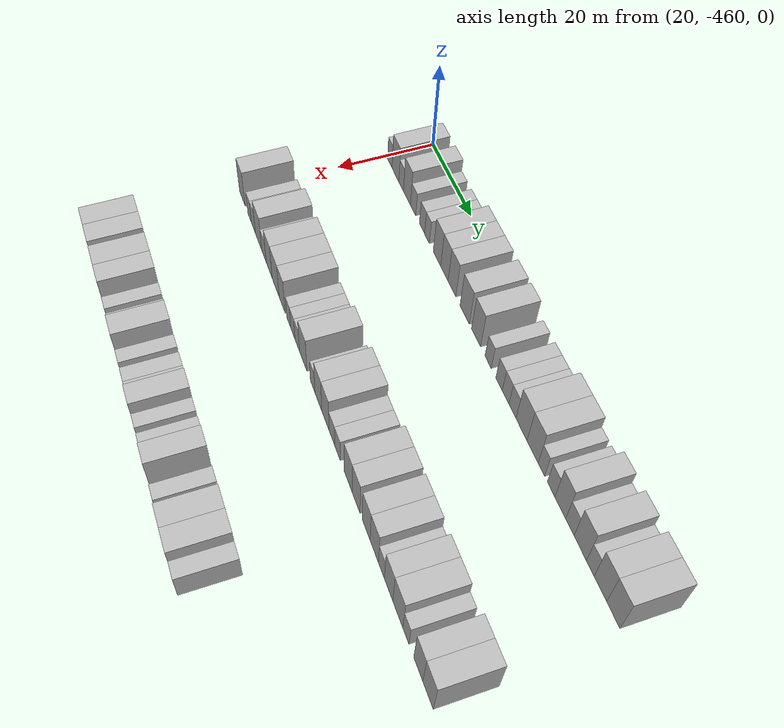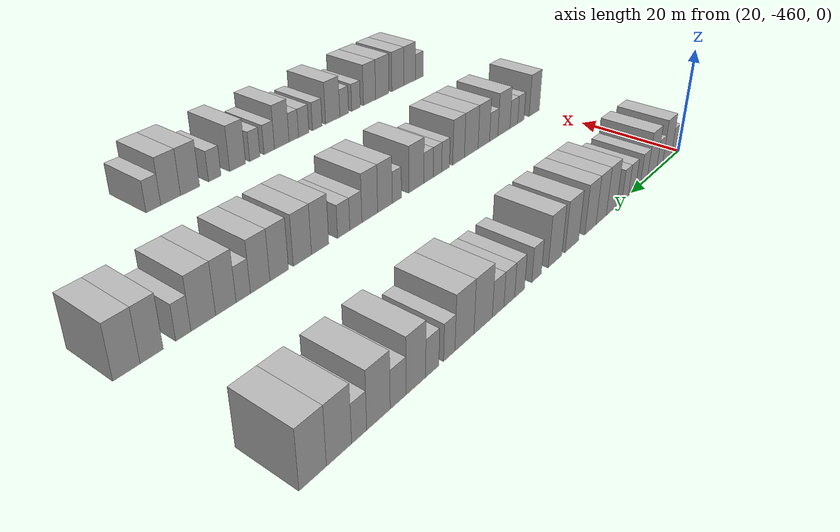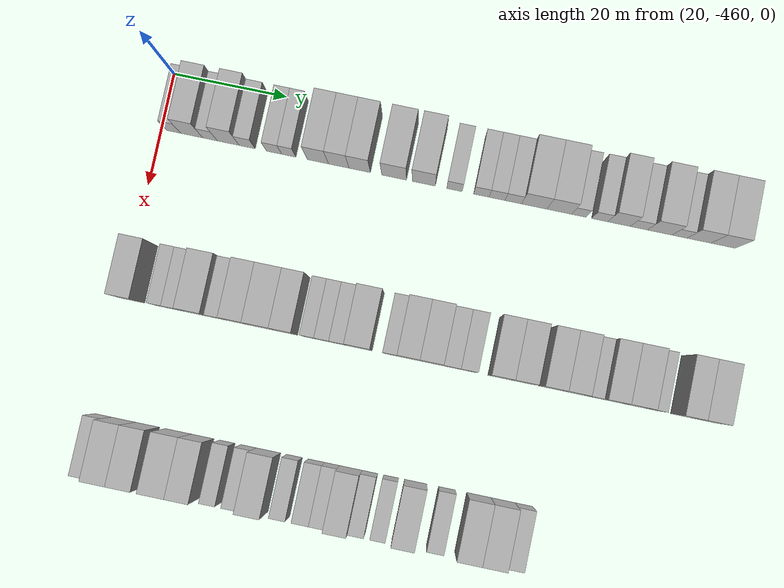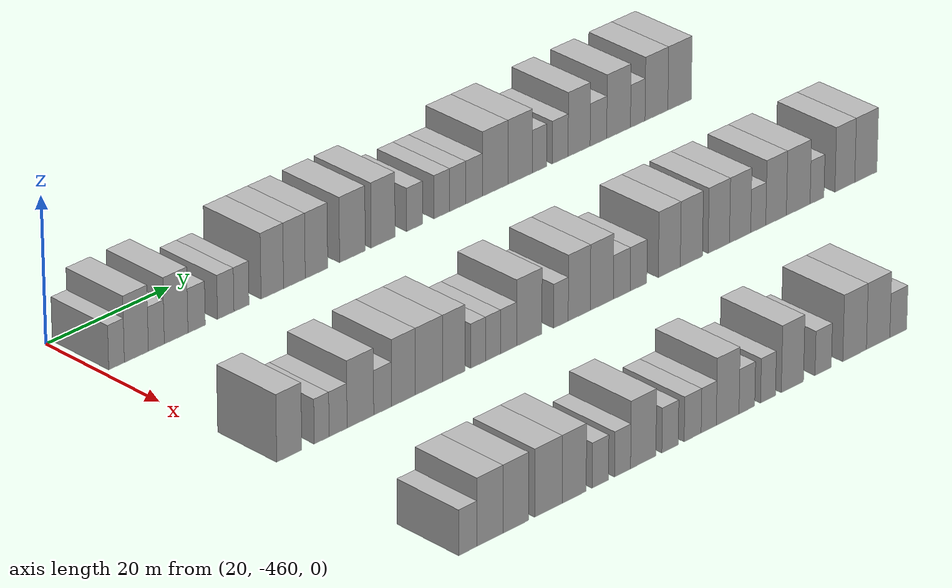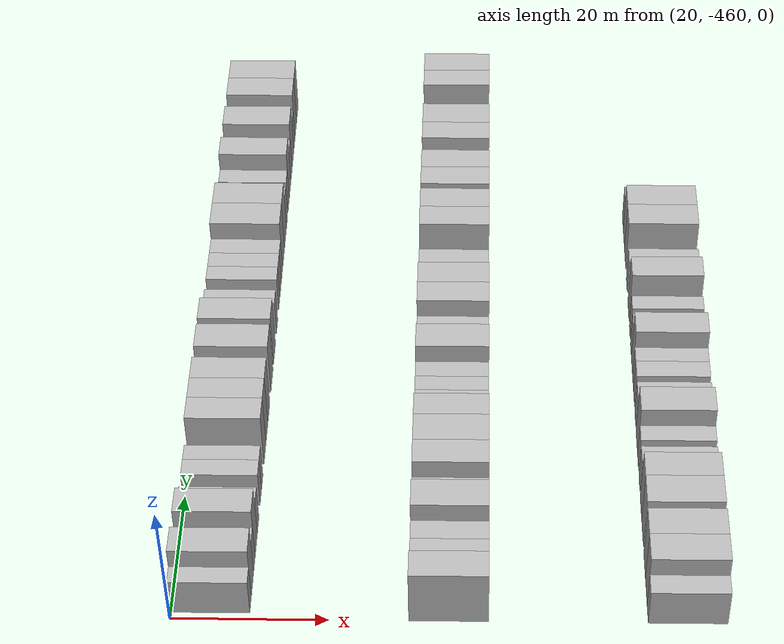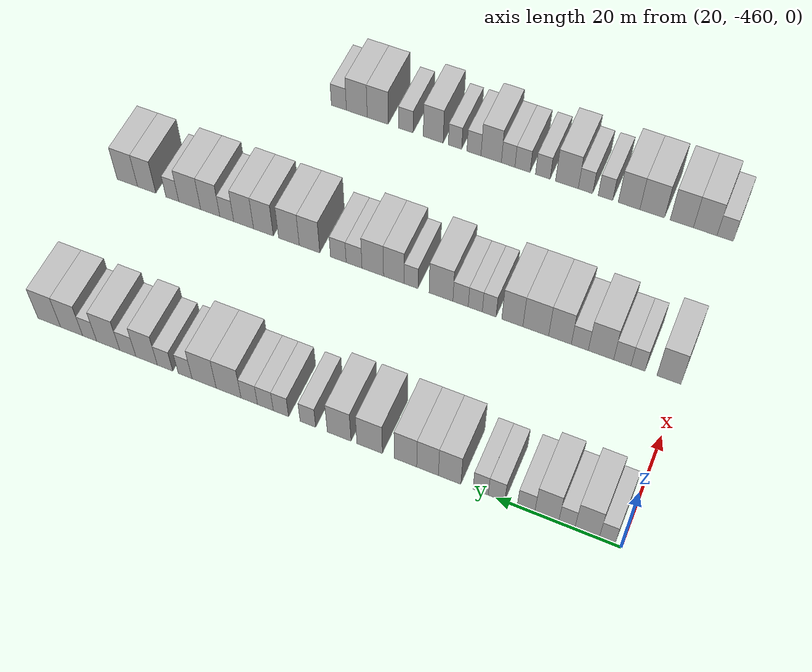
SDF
<sdf version="1.6">
 <world name="default">
  <model name="building_1">
   <static>1</static>
   <pose>25.0000 -457.7457 0 0.000000 0.000000 0.000000</pose>
   <link name="link">
    <pose>0 0 3.00 0 0 0</pose>
    <collision name="collision"><geometry><box><size>10.0000 2.5086 6.0000</size></box></geometry></collision>
    <visual name="visual">
     <cast_shadows>0</cast_shadows>
     <geometry><box><size>10.0000 2.5086 6.0000</size></box></geometry>
     <material>
      <script>
       <uri>model://HANNAS_wall/materials/scripts</uri>
       <uri>model://HANNAS_wall/materials/textures</uri>
       <name>vrc/HANNAS_wall</name>
      </script>
     </material>
    </visual>
   </link>
  </model>
  <model name="building_2">
   <static>1</static>
   <pose>25.0000 -454.5557 0 0.000000 0.000000 0.000000</pose>
   <link name="link">
    <pose>0 0 4.50 0 0 0</pose>
    <collision name="collision"><geometry><box><size>10.0000 3.8714 9.0000</size></box></geometry></collision>
    <visual name="visual">
     <cast_shadows>0</cast_shadows>
     <geometry><box><size>10.0000 3.8714 9.0000</size></box></geometry>
     <material>
      <script>
       <uri>model://HANNAS_wall/materials/scripts</uri>
       <uri>model://HANNAS_wall/materials/textures</uri>
       <name>vrc/HANNAS_wall</name>
      </script>
     </material>
    </visual>
   </link>
  </model>
  <model name="building_3">
   <static>1</static>
   <pose>25.0000 -451.3285 0 0.000000 0.000000 0.000000</pose>
   <link name="link">
    <pose>0 0 3.00 0 0 0</pose>
    <collision name="collision"><geometry><box><size>10.0000 2.5830 6.0000</size></box></geometry></collision>
    <visual name="visual">
     <cast_shadows>0</cast_shadows>
     <geometry><box><size>10.0000 2.5830 6.0000</size></box></geometry>
     <material>
      <script>
       <uri>model://HANNAS_wall/materials/scripts</uri>
       <uri>model://HANNAS_wall/materials/textures</uri>
       <name>vrc/HANNAS_wall</name>
      </script>
     </material>
    </visual>
   </link>
  </model>
  <model name="building_4">
   <static>1</static>
   <pose>25.0000 -448.1120 0 0.000000 0.000000 0.000000</pose>
   <link name="link">
    <pose>0 0 4.50 0 0 0</pose>
    <collision name="collision"><geometry><box><size>10.0000 3.8501 9.0000</size></box></geometry></collision>
    <visual name="visual">
     <cast_shadows>0</cast_shadows>
     <geometry><box><size>10.0000 3.8501 9.0000</size></box></geometry>
     <material>
      <script>
       <uri>model://HANNAS_wall/materials/scripts</uri>
       <uri>model://HANNAS_wall/materials/textures</uri>
       <name>vrc/HANNAS_wall</name>
      </script>
     </material>
    </visual>
   </link>
  </model>
  <model name="building_5">
   <static>1</static>
   <pose>25.0000 -444.7718 0 0.000000 0.000000 0.000000</pose>
   <link name="link">
    <pose>0 0 3.00 0 0 0</pose>
    <collision name="collision"><geometry><box><size>10.0000 2.8304 6.0000</size></box></geometry></collision>
    <visual name="visual">
     <cast_shadows>0</cast_shadows>
     <geometry><box><size>10.0000 2.8304 6.0000</size></box></geometry>
     <material>
      <script>
       <uri>model://HANNAS_wall/materials/scripts</uri>
       <uri>model://HANNAS_wall/materials/textures</uri>
       <name>vrc/HANNAS_wall</name>
      </script>
     </material>
    </visual>
   </link>
  </model>
  <model name="building_6">
   <static>1</static>
   <pose>25.0000 -440.0034 0 0.000000 0.000000 0.000000</pose>
   <link name="link">
    <pose>0 0 3.00 0 0 0</pose>
    <collision name="collision"><geometry><box><size>10.0000 2.7064 6.0000</size></box></geometry></collision>
    <visual name="visual">
     <cast_shadows>0</cast_shadows>
     <geometry><box><size>10.0000 2.7064 6.0000</size></box></geometry>
     <material>
      <script>
       <uri>model://HANNAS_wall/materials/scripts</uri>
       <uri>model://HANNAS_wall/materials/textures</uri>
       <name>vrc/HANNAS_wall</name>
      </script>
     </material>
    </visual>
   </link>
  </model>
  <model name="building_7">
   <static>1</static>
   <pose>25.0000 -437.4058 0 0.000000 0.000000 0.000000</pose>
   <link name="link">
    <pose>0 0 3.00 0 0 0</pose>
    <collision name="collision"><geometry><box><size>10.0000 2.4887 6.0000</size></box></geometry></collision>
    <visual name="visual">
     <cast_shadows>0</cast_shadows>
     <geometry><box><size>10.0000 2.4887 6.0000</size></box></geometry>
     <material>
      <script>
       <uri>model://HANNAS_wall/materials/scripts</uri>
       <uri>model://HANNAS_wall/materials/textures</uri>
       <name>vrc/HANNAS_wall</name>
      </script>
     </material>
    </visual>
   </link>
  </model>
  <model name="building_8">
   <static>1</static>
   <pose>25.0000 -432.2913 0 0.000000 0.000000 0.000000</pose>
   <link name="link">
    <pose>0 0 4.50 0 0 0</pose>
    <collision name="collision"><geometry><box><size>10.0000 3.7402 9.0000</size></box></geometry></collision>
    <visual name="visual">
     <cast_shadows>0</cast_shadows>
     <geometry><box><size>10.0000 3.7402 9.0000</size></box></geometry>
     <material>
      <script>
       <uri>model://HANNAS_wall/materials/scripts</uri>
       <uri>model://HANNAS_wall/materials/textures</uri>
       <name>vrc/HANNAS_wall</name>
      </script>
     </material>
    </visual>
   </link>
  </model>
  <model name="building_9">
   <static>1</static>
   <pose>25.0000 -428.6102 0 0.000000 0.000000 0.000000</pose>
   <link name="link">
    <pose>0 0 4.50 0 0 0</pose>
    <collision name="collision"><geometry><box><size>10.0000 3.6220 9.0000</size></box></geometry></collision>
    <visual name="visual">
     <cast_shadows>0</cast_shadows>
     <geometry><box><size>10.0000 3.6220 9.0000</size></box></geometry>
     <material>
      <script>
       <uri>model://HANNAS_wall/materials/scripts</uri>
       <uri>model://HANNAS_wall/materials/textures</uri>
       <name>vrc/HANNAS_wall</name>
      </script>
     </material>
    </visual>
   </link>
  </model>
  <model name="building_10">
   <static>1</static>
   <pose>25.0000 -424.9106 0 0.000000 0.000000 0.000000</pose>
   <link name="link">
    <pose>0 0 4.50 0 0 0</pose>
    <collision name="collision"><geometry><box><size>10.0000 3.7773 9.0000</size></box></geometry></collision>
    <visual name="visual">
     <cast_shadows>0</cast_shadows>
     <geometry><box><size>10.0000 3.7773 9.0000</size></box></geometry>
     <material>
      <script>
       <uri>model://HANNAS_wall/materials/scripts</uri>
       <uri>model://HANNAS_wall/materials/textures</uri>
       <name>vrc/HANNAS_wall</name>
      </script>
     </material>
    </visual>
   </link>
  </model>
  <model name="building_11">
   <static>1</static>
   <pose>25.0000 -418.8472 0 0.000000 0.000000 0.000000</pose>
   <link name="link">
    <pose>0 0 4.50 0 0 0</pose>
    <collision name="collision"><geometry><box><size>10.0000 4.3493 9.0000</size></box></geometry></collision>
    <visual name="visual">
     <cast_shadows>0</cast_shadows>
     <geometry><box><size>10.0000 4.3493 9.0000</size></box></geometry>
     <material>
      <script>
       <uri>model://HANNAS_wall/materials/scripts</uri>
       <uri>model://HANNAS_wall/materials/textures</uri>
       <name>vrc/HANNAS_wall</name>
      </script>
     </material>
    </visual>
   </link>
  </model>
  <model name="building_12">
   <static>1</static>
   <pose>25.0000 -413.6309 0 0.000000 0.000000 0.000000</pose>
   <link name="link">
    <pose>0 0 4.50 0 0 0</pose>
    <collision name="collision"><geometry><box><size>10.0000 4.0833 9.0000</size></box></geometry></collision>
    <visual name="visual">
     <cast_shadows>0</cast_shadows>
     <geometry><box><size>10.0000 4.0833 9.0000</size></box></geometry>
     <material>
      <script>
       <uri>model://HANNAS_wall/materials/scripts</uri>
       <uri>model://HANNAS_wall/materials/textures</uri>
       <name>vrc/HANNAS_wall</name>
      </script>
     </material>
    </visual>
   </link>
  </model>
  <model name="building_13">
   <static>1</static>
   <pose>25.0000 -408.2302 0 0.000000 0.000000 0.000000</pose>
   <link name="link">
    <pose>0 0 3.00 0 0 0</pose>
    <collision name="collision"><geometry><box><size>10.0000 2.7181 6.0000</size></box></geometry></collision>
    <visual name="visual">
     <cast_shadows>0</cast_shadows>
     <geometry><box><size>10.0000 2.7181 6.0000</size></box></geometry>
     <material>
      <script>
       <uri>model://HANNAS_wall/materials/scripts</uri>
       <uri>model://HANNAS_wall/materials/textures</uri>
       <name>vrc/HANNAS_wall</name>
      </script>
     </material>
    </visual>
   </link>
  </model>
  <model name="building_14">
   <static>1</static>
   <pose>25.0000 -403.5252 0 0.000000 0.000000 0.000000</pose>
   <link name="link">
    <pose>0 0 3.00 0 0 0</pose>
    <collision name="collision"><geometry><box><size>10.0000 2.6919 6.0000</size></box></geometry></collision>
    <visual name="visual">
     <cast_shadows>0</cast_shadows>
     <geometry><box><size>10.0000 2.6919 6.0000</size></box></geometry>
     <material>
      <script>
       <uri>model://HANNAS_wall/materials/scripts</uri>
       <uri>model://HANNAS_wall/materials/textures</uri>
       <name>vrc/HANNAS_wall</name>
      </script>
     </material>
    </visual>
   </link>
  </model>
  <model name="building_15">
   <static>1</static>
   <pose>25.0000 -400.7834 0 0.000000 0.000000 0.000000</pose>
   <link name="link">
    <pose>0 0 3.00 0 0 0</pose>
    <collision name="collision"><geometry><box><size>10.0000 2.7916 6.0000</size></box></geometry></collision>
    <visual name="visual">
     <cast_shadows>0</cast_shadows>
     <geometry><box><size>10.0000 2.7916 6.0000</size></box></geometry>
     <material>
      <script>
       <uri>model://HANNAS_wall/materials/scripts</uri>
       <uri>model://HANNAS_wall/materials/textures</uri>
       <name>vrc/HANNAS_wall</name>
      </script>
     </material>
    </visual>
   </link>
  </model>
  <model name="building_16">
   <static>1</static>
   <pose>25.0000 -397.9333 0 0.000000 0.000000 0.000000</pose>
   <link name="link">
    <pose>0 0 3.00 0 0 0</pose>
    <collision name="collision"><geometry><box><size>10.0000 2.9087 6.0000</size></box></geometry></collision>
    <visual name="visual">
     <cast_shadows>0</cast_shadows>
     <geometry><box><size>10.0000 2.9087 6.0000</size></box></geometry>
     <material>
      <script>
       <uri>model://HANNAS_wall/materials/scripts</uri>
       <uri>model://HANNAS_wall/materials/textures</uri>
       <name>vrc/HANNAS_wall</name>
      </script>
     </material>
    </visual>
   </link>
  </model>
  <model name="building_17">
   <static>1</static>
   <pose>25.0000 -394.2584 0 0.000000 0.000000 0.000000</pose>
   <link name="link">
    <pose>0 0 4.50 0 0 0</pose>
    <collision name="collision"><geometry><box><size>10.0000 4.4411 9.0000</size></box></geometry></collision>
    <visual name="visual">
     <cast_shadows>0</cast_shadows>
     <geometry><box><size>10.0000 4.4411 9.0000</size></box></geometry>
     <material>
      <script>
       <uri>model://HANNAS_wall/materials/scripts</uri>
       <uri>model://HANNAS_wall/materials/textures</uri>
       <name>vrc/HANNAS_wall</name>
      </script>
     </material>
    </visual>
   </link>
  </model>
  <model name="building_18">
   <static>1</static>
   <pose>25.0000 -389.8638 0 0.000000 0.000000 0.000000</pose>
   <link name="link">
    <pose>0 0 4.50 0 0 0</pose>
    <collision name="collision"><geometry><box><size>10.0000 4.3482 9.0000</size></box></geometry></collision>
    <visual name="visual">
     <cast_shadows>0</cast_shadows>
     <geometry><box><size>10.0000 4.3482 9.0000</size></box></geometry>
     <material>
      <script>
       <uri>model://HANNAS_wall/materials/scripts</uri>
       <uri>model://HANNAS_wall/materials/textures</uri>
       <name>vrc/HANNAS_wall</name>
      </script>
     </material>
    </visual>
   </link>
  </model>
  <model name="building_19">
   <static>1</static>
   <pose>25.0000 -386.4379 0 0.000000 0.000000 0.000000</pose>
   <link name="link">
    <pose>0 0 3.00 0 0 0</pose>
    <collision name="collision"><geometry><box><size>10.0000 2.5035 6.0000</size></box></geometry></collision>
    <visual name="visual">
     <cast_shadows>0</cast_shadows>
     <geometry><box><size>10.0000 2.5035 6.0000</size></box></geometry>
     <material>
      <script>
       <uri>model://HANNAS_wall/materials/scripts</uri>
       <uri>model://HANNAS_wall/materials/textures</uri>
       <name>vrc/HANNAS_wall</name>
      </script>
     </material>
    </visual>
   </link>
  </model>
  <model name="building_20">
   <static>1</static>
   <pose>25.0000 -382.7788 0 0.000000 0.000000 0.000000</pose>
   <link name="link">
    <pose>0 0 3.00 0 0 0</pose>
    <collision name="collision"><geometry><box><size>10.0000 2.8147 6.0000</size></box></geometry></collision>
    <visual name="visual">
     <cast_shadows>0</cast_shadows>
     <geometry><box><size>10.0000 2.8147 6.0000</size></box></geometry>
     <material>
      <script>
       <uri>model://HANNAS_wall/materials/scripts</uri>
       <uri>model://HANNAS_wall/materials/textures</uri>
       <name>vrc/HANNAS_wall</name>
      </script>
     </material>
    </visual>
   </link>
  </model>
  <model name="building_21">
   <static>1</static>
   <pose>25.0000 -379.4013 0 0.000000 0.000000 0.000000</pose>
   <link name="link">
    <pose>0 0 4.50 0 0 0</pose>
    <collision name="collision"><geometry><box><size>10.0000 3.9403 9.0000</size></box></geometry></collision>
    <visual name="visual">
     <cast_shadows>0</cast_shadows>
     <geometry><box><size>10.0000 3.9403 9.0000</size></box></geometry>
     <material>
      <script>
       <uri>model://HANNAS_wall/materials/scripts</uri>
       <uri>model://HANNAS_wall/materials/textures</uri>
       <name>vrc/HANNAS_wall</name>
      </script>
     </material>
    </visual>
   </link>
  </model>
  <model name="building_22">
   <static>1</static>
   <pose>25.0000 -375.9395 0 0.000000 0.000000 0.000000</pose>
   <link name="link">
    <pose>0 0 3.00 0 0 0</pose>
    <collision name="collision"><geometry><box><size>10.0000 2.9834 6.0000</size></box></geometry></collision>
    <visual name="visual">
     <cast_shadows>0</cast_shadows>
     <geometry><box><size>10.0000 2.9834 6.0000</size></box></geometry>
     <material>
      <script>
       <uri>model://HANNAS_wall/materials/scripts</uri>
       <uri>model://HANNAS_wall/materials/textures</uri>
       <name>vrc/HANNAS_wall</name>
      </script>
     </material>
    </visual>
   </link>
  </model>
  <model name="building_23">
   <static>1</static>
   <pose>25.0000 -372.3042 0 0.000000 0.000000 0.000000</pose>
   <link name="link">
    <pose>0 0 4.50 0 0 0</pose>
    <collision name="collision"><geometry><box><size>10.0000 4.2872 9.0000</size></box></geometry></collision>
    <visual name="visual">
     <cast_shadows>0</cast_shadows>
     <geometry><box><size>10.0000 4.2872 9.0000</size></box></geometry>
     <material>
      <script>
       <uri>model://HANNAS_wall/materials/scripts</uri>
       <uri>model://HANNAS_wall/materials/textures</uri>
       <name>vrc/HANNAS_wall</name>
      </script>
     </material>
    </visual>
   </link>
  </model>
  <model name="building_24">
   <static>1</static>
   <pose>25.0000 -368.8440 0 0.000000 0.000000 0.000000</pose>
   <link name="link">
    <pose>0 0 3.00 0 0 0</pose>
    <collision name="collision"><geometry><box><size>10.0000 2.6332 6.0000</size></box></geometry></collision>
    <visual name="visual">
     <cast_shadows>0</cast_shadows>
     <geometry><box><size>10.0000 2.6332 6.0000</size></box></geometry>
     <material>
      <script>
       <uri>model://HANNAS_wall/materials/scripts</uri>
       <uri>model://HANNAS_wall/materials/textures</uri>
       <name>vrc/HANNAS_wall</name>
      </script>
     </material>
    </visual>
   </link>
  </model>
  <model name="building_25">
   <static>1</static>
   <pose>25.0000 -365.4459 0 0.000000 0.000000 0.000000</pose>
   <link name="link">
    <pose>0 0 4.50 0 0 0</pose>
    <collision name="collision"><geometry><box><size>10.0000 4.1630 9.0000</size></box></geometry></collision>
    <visual name="visual">
     <cast_shadows>0</cast_shadows>
     <geometry><box><size>10.0000 4.1630 9.0000</size></box></geometry>
     <material>
      <script>
       <uri>model://HANNAS_wall/materials/scripts</uri>
       <uri>model://HANNAS_wall/materials/textures</uri>
       <name>vrc/HANNAS_wall</name>
      </script>
     </material>
    </visual>
   </link>
  </model>
  <model name="building_26">
   <static>1</static>
   <pose>25.0000 -361.2207 0 0.000000 0.000000 0.000000</pose>
   <link name="link">
    <pose>0 0 4.50 0 0 0</pose>
    <collision name="collision"><geometry><box><size>10.0000 4.2874 9.0000</size></box></geometry></collision>
    <visual name="visual">
     <cast_shadows>0</cast_shadows>
     <geometry><box><size>10.0000 4.2874 9.0000</size></box></geometry>
     <material>
      <script>
       <uri>model://HANNAS_wall/materials/scripts</uri>
       <uri>model://HANNAS_wall/materials/textures</uri>
       <name>vrc/HANNAS_wall</name>
      </script>
     </material>
    </visual>
   </link>
  </model>
  <model name="building_208">
   <static>1</static>
   <pose>55.0000 -457.9920 0 0.000000 0.000000 0.000000</pose>
   <link name="link">
    <pose>0 0 4.50 0 0 0</pose>
    <collision name="collision"><geometry><box><size>10.0000 4.0160 9.0000</size></box></geometry></collision>
    <visual name="visual">
     <cast_shadows>0</cast_shadows>
     <geometry><box><size>10.0000 4.0160 9.0000</size></box></geometry>
     <material>
      <script>
       <uri>model://HANNAS_wall/materials/scripts</uri>
       <uri>model://HANNAS_wall/materials/textures</uri>
       <name>vrc/HANNAS_wall</name>
      </script>
     </material>
    </visual>
   </link>
  </model>
  <model name="building_209">
   <static>1</static>
   <pose>55.0000 -452.7828 0 0.000000 0.000000 0.000000</pose>
   <link name="link">
    <pose>0 0 3.00 0 0 0</pose>
    <collision name="collision"><geometry><box><size>10.0000 2.4023 6.0000</size></box></geometry></collision>
    <visual name="visual">
     <cast_shadows>0</cast_shadows>
     <geometry><box><size>10.0000 2.4023 6.0000</size></box></geometry>
     <material>
      <script>
       <uri>model://HANNAS_wall/materials/scripts</uri>
       <uri>model://HANNAS_wall/materials/textures</uri>
       <name>vrc/HANNAS_wall</name>
      </script>
     </material>
    </visual>
   </link>
  </model>
  <model name="building_210">
   <static>1</static>
   <pose>55.0000 -450.1242 0 0.000000 0.000000 0.000000</pose>
   <link name="link">
    <pose>0 0 3.00 0 0 0</pose>
    <collision name="collision"><geometry><box><size>10.0000 2.9151 6.0000</size></box></geometry></collision>
    <visual name="visual">
     <cast_shadows>0</cast_shadows>
     <geometry><box><size>10.0000 2.9151 6.0000</size></box></geometry>
     <material>
      <script>
       <uri>model://HANNAS_wall/materials/scripts</uri>
       <uri>model://HANNAS_wall/materials/textures</uri>
       <name>vrc/HANNAS_wall</name>
      </script>
     </material>
    </visual>
   </link>
  </model>
  <model name="building_211">
   <static>1</static>
   <pose>55.0000 -446.4964 0 0.000000 0.000000 0.000000</pose>
   <link name="link">
    <pose>0 0 4.50 0 0 0</pose>
    <collision name="collision"><geometry><box><size>10.0000 4.3405 9.0000</size></box></geometry></collision>
    <visual name="visual">
     <cast_shadows>0</cast_shadows>
     <geometry><box><size>10.0000 4.3405 9.0000</size></box></geometry>
     <material>
      <script>
       <uri>model://HANNAS_wall/materials/scripts</uri>
       <uri>model://HANNAS_wall/materials/textures</uri>
       <name>vrc/HANNAS_wall</name>
      </script>
     </material>
    </visual>
   </link>
  </model>
  <model name="building_212">
   <static>1</static>
   <pose>55.0000 -442.8612 0 0.000000 0.000000 0.000000</pose>
   <link name="link">
    <pose>0 0 3.00 0 0 0</pose>
    <collision name="collision"><geometry><box><size>10.0000 2.9299 6.0000</size></box></geometry></collision>
    <visual name="visual">
     <cast_shadows>0</cast_shadows>
     <geometry><box><size>10.0000 2.9299 6.0000</size></box></geometry>
     <material>
      <script>
       <uri>model://HANNAS_wall/materials/scripts</uri>
       <uri>model://HANNAS_wall/materials/textures</uri>
       <name>vrc/HANNAS_wall</name>
      </script>
     </material>
    </visual>
   </link>
  </model>
  <model name="building_213">
   <static>1</static>
   <pose>55.0000 -439.4380 0 0.000000 0.000000 0.000000</pose>
   <link name="link">
    <pose>0 0 4.50 0 0 0</pose>
    <collision name="collision"><geometry><box><size>10.0000 3.9164 9.0000</size></box></geometry></collision>
    <visual name="visual">
     <cast_shadows>0</cast_shadows>
     <geometry><box><size>10.0000 3.9164 9.0000</size></box></geometry>
     <material>
      <script>
       <uri>model://HANNAS_wall/materials/scripts</uri>
       <uri>model://HANNAS_wall/materials/textures</uri>
       <name>vrc/HANNAS_wall</name>
      </script>
     </material>
    </visual>
   </link>
  </model>
  <model name="building_214">
   <static>1</static>
   <pose>55.0000 -435.2332 0 0.000000 0.000000 0.000000</pose>
   <link name="link">
    <pose>0 0 4.50 0 0 0</pose>
    <collision name="collision"><geometry><box><size>10.0000 4.4932 9.0000</size></box></geometry></collision>
    <visual name="visual">
     <cast_shadows>0</cast_shadows>
     <geometry><box><size>10.0000 4.4932 9.0000</size></box></geometry>
     <material>
      <script>
       <uri>model://HANNAS_wall/materials/scripts</uri>
       <uri>model://HANNAS_wall/materials/textures</uri>
       <name>vrc/HANNAS_wall</name>
      </script>
     </material>
    </visual>
   </link>
  </model>
  <model name="building_215">
   <static>1</static>
   <pose>55.0000 -431.1348 0 0.000000 0.000000 0.000000</pose>
   <link name="link">
    <pose>0 0 4.50 0 0 0</pose>
    <collision name="collision"><geometry><box><size>10.0000 3.7037 9.0000</size></box></geometry></collision>
    <visual name="visual">
     <cast_shadows>0</cast_shadows>
     <geometry><box><size>10.0000 3.7037 9.0000</size></box></geometry>
     <material>
      <script>
       <uri>model://HANNAS_wall/materials/scripts</uri>
       <uri>model://HANNAS_wall/materials/textures</uri>
       <name>vrc/HANNAS_wall</name>
      </script>
     </material>
    </visual>
   </link>
  </model>
  <model name="building_216">
   <static>1</static>
   <pose>55.0000 -427.0644 0 0.000000 0.000000 0.000000</pose>
   <link name="link">
    <pose>0 0 3.00 0 0 0</pose>
    <collision name="collision"><geometry><box><size>10.0000 2.4370 6.0000</size></box></geometry></collision>
    <visual name="visual">
     <cast_shadows>0</cast_shadows>
     <geometry><box><size>10.0000 2.4370 6.0000</size></box></geometry>
     <material>
      <script>
       <uri>model://HANNAS_wall/materials/scripts</uri>
       <uri>model://HANNAS_wall/materials/textures</uri>
       <name>vrc/HANNAS_wall</name>
      </script>
     </material>
    </visual>
   </link>
  </model>
  <model name="building_217">
   <static>1</static>
   <pose>55.0000 -424.5924 0 0.000000 0.000000 0.000000</pose>
   <link name="link">
    <pose>0 0 3.00 0 0 0</pose>
    <collision name="collision"><geometry><box><size>10.0000 2.5071 6.0000</size></box></geometry></collision>
    <visual name="visual">
     <cast_shadows>0</cast_shadows>
     <geometry><box><size>10.0000 2.5071 6.0000</size></box></geometry>
     <material>
      <script>
       <uri>model://HANNAS_wall/materials/scripts</uri>
       <uri>model://HANNAS_wall/materials/textures</uri>
       <name>vrc/HANNAS_wall</name>
      </script>
     </material>
    </visual>
   </link>
  </model>
  <model name="building_218">
   <static>1</static>
   <pose>55.0000 -421.9697 0 0.000000 0.000000 0.000000</pose>
   <link name="link">
    <pose>0 0 3.00 0 0 0</pose>
    <collision name="collision"><geometry><box><size>10.0000 2.7382 6.0000</size></box></geometry></collision>
    <visual name="visual">
     <cast_shadows>0</cast_shadows>
     <geometry><box><size>10.0000 2.7382 6.0000</size></box></geometry>
     <material>
      <script>
       <uri>model://HANNAS_wall/materials/scripts</uri>
       <uri>model://HANNAS_wall/materials/textures</uri>
       <name>vrc/HANNAS_wall</name>
      </script>
     </material>
    </visual>
   </link>
  </model>
  <model name="building_219">
   <static>1</static>
   <pose>55.0000 -418.4558 0 0.000000 0.000000 0.000000</pose>
   <link name="link">
    <pose>0 0 4.50 0 0 0</pose>
    <collision name="collision"><geometry><box><size>10.0000 4.2896 9.0000</size></box></geometry></collision>
    <visual name="visual">
     <cast_shadows>0</cast_shadows>
     <geometry><box><size>10.0000 4.2896 9.0000</size></box></geometry>
     <material>
      <script>
       <uri>model://HANNAS_wall/materials/scripts</uri>
       <uri>model://HANNAS_wall/materials/textures</uri>
       <name>vrc/HANNAS_wall</name>
      </script>
     </material>
    </visual>
   </link>
  </model>
  <model name="building_220">
   <static>1</static>
   <pose>55.0000 -413.0682 0 0.000000 0.000000 0.000000</pose>
   <link name="link">
    <pose>0 0 3.00 0 0 0</pose>
    <collision name="collision"><geometry><box><size>10.0000 2.4857 6.0000</size></box></geometry></collision>
    <visual name="visual">
     <cast_shadows>0</cast_shadows>
     <geometry><box><size>10.0000 2.4857 6.0000</size></box></geometry>
     <material>
      <script>
       <uri>model://HANNAS_wall/materials/scripts</uri>
       <uri>model://HANNAS_wall/materials/textures</uri>
       <name>vrc/HANNAS_wall</name>
      </script>
     </material>
    </visual>
   </link>
  </model>
  <model name="building_221">
   <static>1</static>
   <pose>55.0000 -409.9319 0 0.000000 0.000000 0.000000</pose>
   <link name="link">
    <pose>0 0 4.50 0 0 0</pose>
    <collision name="collision"><geometry><box><size>10.0000 3.7869 9.0000</size></box></geometry></collision>
    <visual name="visual">
     <cast_shadows>0</cast_shadows>
     <geometry><box><size>10.0000 3.7869 9.0000</size></box></geometry>
     <material>
      <script>
       <uri>model://HANNAS_wall/materials/scripts</uri>
       <uri>model://HANNAS_wall/materials/textures</uri>
       <name>vrc/HANNAS_wall</name>
      </script>
     </material>
    </visual>
   </link>
  </model>
  <model name="building_222">
   <static>1</static>
   <pose>55.0000 -406.0567 0 0.000000 0.000000 0.000000</pose>
   <link name="link">
    <pose>0 0 4.50 0 0 0</pose>
    <collision name="collision"><geometry><box><size>10.0000 3.9634 9.0000</size></box></geometry></collision>
    <visual name="visual">
     <cast_shadows>0</cast_shadows>
     <geometry><box><size>10.0000 3.9634 9.0000</size></box></geometry>
     <material>
      <script>
       <uri>model://HANNAS_wall/materials/scripts</uri>
       <uri>model://HANNAS_wall/materials/textures</uri>
       <name>vrc/HANNAS_wall</name>
      </script>
     </material>
    </visual>
   </link>
  </model>
  <model name="building_223">
   <static>1</static>
   <pose>55.0000 -402.6124 0 0.000000 0.000000 0.000000</pose>
   <link name="link">
    <pose>0 0 3.00 0 0 0</pose>
    <collision name="collision"><geometry><box><size>10.0000 2.9252 6.0000</size></box></geometry></collision>
    <visual name="visual">
     <cast_shadows>0</cast_shadows>
     <geometry><box><size>10.0000 2.9252 6.0000</size></box></geometry>
     <material>
      <script>
       <uri>model://HANNAS_wall/materials/scripts</uri>
       <uri>model://HANNAS_wall/materials/textures</uri>
       <name>vrc/HANNAS_wall</name>
      </script>
     </material>
    </visual>
   </link>
  </model>
  <model name="building_224">
   <static>1</static>
   <pose>55.0000 -399.6987 0 0.000000 0.000000 0.000000</pose>
   <link name="link">
    <pose>0 0 3.00 0 0 0</pose>
    <collision name="collision"><geometry><box><size>10.0000 2.9021 6.0000</size></box></geometry></collision>
    <visual name="visual">
     <cast_shadows>0</cast_shadows>
     <geometry><box><size>10.0000 2.9021 6.0000</size></box></geometry>
     <material>
      <script>
       <uri>model://HANNAS_wall/materials/scripts</uri>
       <uri>model://HANNAS_wall/materials/textures</uri>
       <name>vrc/HANNAS_wall</name>
      </script>
     </material>
    </visual>
   </link>
  </model>
  <model name="building_225">
   <static>1</static>
   <pose>55.0000 -394.3181 0 0.000000 0.000000 0.000000</pose>
   <link name="link">
    <pose>0 0 4.50 0 0 0</pose>
    <collision name="collision"><geometry><box><size>10.0000 3.8592 9.0000</size></box></geometry></collision>
    <visual name="visual">
     <cast_shadows>0</cast_shadows>
     <geometry><box><size>10.0000 3.8592 9.0000</size></box></geometry>
     <material>
      <script>
       <uri>model://HANNAS_wall/materials/scripts</uri>
       <uri>model://HANNAS_wall/materials/textures</uri>
       <name>vrc/HANNAS_wall</name>
      </script>
     </material>
    </visual>
   </link>
  </model>
  <model name="building_226">
   <static>1</static>
   <pose>55.0000 -390.4377 0 0.000000 0.000000 0.000000</pose>
   <link name="link">
    <pose>0 0 4.50 0 0 0</pose>
    <collision name="collision"><geometry><box><size>10.0000 3.9016 9.0000</size></box></geometry></collision>
    <visual name="visual">
     <cast_shadows>0</cast_shadows>
     <geometry><box><size>10.0000 3.9016 9.0000</size></box></geometry>
     <material>
      <script>
       <uri>model://HANNAS_wall/materials/scripts</uri>
       <uri>model://HANNAS_wall/materials/textures</uri>
       <name>vrc/HANNAS_wall</name>
      </script>
     </material>
    </visual>
   </link>
  </model>
  <model name="building_227">
   <static>1</static>
   <pose>55.0000 -385.5975 0 0.000000 0.000000 0.000000</pose>
   <link name="link">
    <pose>0 0 4.50 0 0 0</pose>
    <collision name="collision"><geometry><box><size>10.0000 3.7789 9.0000</size></box></geometry></collision>
    <visual name="visual">
     <cast_shadows>0</cast_shadows>
     <geometry><box><size>10.0000 3.7789 9.0000</size></box></geometry>
     <material>
      <script>
       <uri>model://HANNAS_wall/materials/scripts</uri>
       <uri>model://HANNAS_wall/materials/textures</uri>
       <name>vrc/HANNAS_wall</name>
      </script>
     </material>
    </visual>
   </link>
  </model>
  <model name="building_228">
   <static>1</static>
   <pose>55.0000 -381.8093 0 0.000000 0.000000 0.000000</pose>
   <link name="link">
    <pose>0 0 4.50 0 0 0</pose>
    <collision name="collision"><geometry><box><size>10.0000 3.7974 9.0000</size></box></geometry></collision>
    <visual name="visual">
     <cast_shadows>0</cast_shadows>
     <geometry><box><size>10.0000 3.7974 9.0000</size></box></geometry>
     <material>
      <script>
       <uri>model://HANNAS_wall/materials/scripts</uri>
       <uri>model://HANNAS_wall/materials/textures</uri>
       <name>vrc/HANNAS_wall</name>
      </script>
     </material>
    </visual>
   </link>
  </model>
  <model name="building_229">
   <static>1</static>
   <pose>55.0000 -378.5659 0 0.000000 0.000000 0.000000</pose>
   <link name="link">
    <pose>0 0 3.00 0 0 0</pose>
    <collision name="collision"><geometry><box><size>10.0000 2.6894 6.0000</size></box></geometry></collision>
    <visual name="visual">
     <cast_shadows>0</cast_shadows>
     <geometry><box><size>10.0000 2.6894 6.0000</size></box></geometry>
     <material>
      <script>
       <uri>model://HANNAS_wall/materials/scripts</uri>
       <uri>model://HANNAS_wall/materials/textures</uri>
       <name>vrc/HANNAS_wall</name>
      </script>
     </material>
    </visual>
   </link>
  </model>
  <model name="building_230">
   <static>1</static>
   <pose>55.0000 -375.3676 0 0.000000 0.000000 0.000000</pose>
   <link name="link">
    <pose>0 0 4.50 0 0 0</pose>
    <collision name="collision"><geometry><box><size>10.0000 3.7072 9.0000</size></box></geometry></collision>
    <visual name="visual">
     <cast_shadows>0</cast_shadows>
     <geometry><box><size>10.0000 3.7072 9.0000</size></box></geometry>
     <material>
      <script>
       <uri>model://HANNAS_wall/materials/scripts</uri>
       <uri>model://HANNAS_wall/materials/textures</uri>
       <name>vrc/HANNAS_wall</name>
      </script>
     </material>
    </visual>
   </link>
  </model>
  <model name="building_231">
   <static>1</static>
   <pose>55.0000 -371.3722 0 0.000000 0.000000 0.000000</pose>
   <link name="link">
    <pose>0 0 4.50 0 0 0</pose>
    <collision name="collision"><geometry><box><size>10.0000 4.2837 9.0000</size></box></geometry></collision>
    <visual name="visual">
     <cast_shadows>0</cast_shadows>
     <geometry><box><size>10.0000 4.2837 9.0000</size></box></geometry>
     <material>
      <script>
       <uri>model://HANNAS_wall/materials/scripts</uri>
       <uri>model://HANNAS_wall/materials/textures</uri>
       <name>vrc/HANNAS_wall</name>
      </script>
     </material>
    </visual>
   </link>
  </model>
  <model name="building_232">
   <static>1</static>
   <pose>55.0000 -367.9658 0 0.000000 0.000000 0.000000</pose>
   <link name="link">
    <pose>0 0 3.00 0 0 0</pose>
    <collision name="collision"><geometry><box><size>10.0000 2.5290 6.0000</size></box></geometry></collision>
    <visual name="visual">
     <cast_shadows>0</cast_shadows>
     <geometry><box><size>10.0000 2.5290 6.0000</size></box></geometry>
     <material>
      <script>
       <uri>model://HANNAS_wall/materials/scripts</uri>
       <uri>model://HANNAS_wall/materials/textures</uri>
       <name>vrc/HANNAS_wall</name>
      </script>
     </material>
    </visual>
   </link>
  </model>
  <model name="building_233">
   <static>1</static>
   <pose>55.0000 -362.8914 0 0.000000 0.000000 0.000000</pose>
   <link name="link">
    <pose>0 0 4.50 0 0 0</pose>
    <collision name="collision"><geometry><box><size>10.0000 3.6199 9.0000</size></box></geometry></collision>
    <visual name="visual">
     <cast_shadows>0</cast_shadows>
     <geometry><box><size>10.0000 3.6199 9.0000</size></box></geometry>
     <material>
      <script>
       <uri>model://HANNAS_wall/materials/scripts</uri>
       <uri>model://HANNAS_wall/materials/textures</uri>
       <name>vrc/HANNAS_wall</name>
      </script>
     </material>
    </visual>
   </link>
  </model>
  <model name="building_234">
   <static>1</static>
   <pose>55.0000 -359.0457 0 0.000000 0.000000 0.000000</pose>
   <link name="link">
    <pose>0 0 4.50 0 0 0</pose>
    <collision name="collision"><geometry><box><size>10.0000 4.0715 9.0000</size></box></geometry></collision>
    <visual name="visual">
     <cast_shadows>0</cast_shadows>
     <geometry><box><size>10.0000 4.0715 9.0000</size></box></geometry>
     <material>
      <script>
       <uri>model://HANNAS_wall/materials/scripts</uri>
       <uri>model://HANNAS_wall/materials/textures</uri>
       <name>vrc/HANNAS_wall</name>
      </script>
     </material>
    </visual>
   </link>
  </model>
  <model name="building_433">
   <static>1</static>
   <pose>85.0000 -458.5544 0 0.000000 0.000000 0.000000</pose>
   <link name="link">
    <pose>0 0 3.00 0 0 0</pose>
    <collision name="collision"><geometry><box><size>10.0000 2.8912 6.0000</size></box></geometry></collision>
    <visual name="visual">
     <cast_shadows>0</cast_shadows>
     <geometry><box><size>10.0000 2.8912 6.0000</size></box></geometry>
     <material>
      <script>
       <uri>model://HANNAS_wall/materials/scripts</uri>
       <uri>model://HANNAS_wall/materials/textures</uri>
       <name>vrc/HANNAS_wall</name>
      </script>
     </material>
    </visual>
   </link>
  </model>
  <model name="building_434">
   <static>1</static>
   <pose>85.0000 -455.0159 0 0.000000 0.000000 0.000000</pose>
   <link name="link">
    <pose>0 0 4.50 0 0 0</pose>
    <collision name="collision"><geometry><box><size>10.0000 4.1857 9.0000</size></box></geometry></collision>
    <visual name="visual">
     <cast_shadows>0</cast_shadows>
     <geometry><box><size>10.0000 4.1857 9.0000</size></box></geometry>
     <material>
      <script>
       <uri>model://HANNAS_wall/materials/scripts</uri>
       <uri>model://HANNAS_wall/materials/textures</uri>
       <name>vrc/HANNAS_wall</name>
      </script>
     </material>
    </visual>
   </link>
  </model>
  <model name="building_435">
   <static>1</static>
   <pose>85.0000 -450.8395 0 0.000000 0.000000 0.000000</pose>
   <link name="link">
    <pose>0 0 4.50 0 0 0</pose>
    <collision name="collision"><geometry><box><size>10.0000 4.1672 9.0000</size></box></geometry></collision>
    <visual name="visual">
     <cast_shadows>0</cast_shadows>
     <geometry><box><size>10.0000 4.1672 9.0000</size></box></geometry>
     <material>
      <script>
       <uri>model://HANNAS_wall/materials/scripts</uri>
       <uri>model://HANNAS_wall/materials/textures</uri>
       <name>vrc/HANNAS_wall</name>
      </script>
     </material>
    </visual>
   </link>
  </model>
  <model name="building_436">
   <static>1</static>
   <pose>85.0000 -445.5211 0 0.000000 0.000000 0.000000</pose>
   <link name="link">
    <pose>0 0 4.50 0 0 0</pose>
    <collision name="collision"><geometry><box><size>10.0000 4.4694 9.0000</size></box></geometry></collision>
    <visual name="visual">
     <cast_shadows>0</cast_shadows>
     <geometry><box><size>10.0000 4.4694 9.0000</size></box></geometry>
     <material>
      <script>
       <uri>model://HANNAS_wall/materials/scripts</uri>
       <uri>model://HANNAS_wall/materials/textures</uri>
       <name>vrc/HANNAS_wall</name>
      </script>
     </material>
    </visual>
   </link>
  </model>
  <model name="building_437">
   <static>1</static>
   <pose>85.0000 -441.3193 0 0.000000 0.000000 0.000000</pose>
   <link name="link">
    <pose>0 0 4.50 0 0 0</pose>
    <collision name="collision"><geometry><box><size>10.0000 3.9343 9.0000</size></box></geometry></collision>
    <visual name="visual">
     <cast_shadows>0</cast_shadows>
     <geometry><box><size>10.0000 3.9343 9.0000</size></box></geometry>
     <material>
      <script>
       <uri>model://HANNAS_wall/materials/scripts</uri>
       <uri>model://HANNAS_wall/materials/textures</uri>
       <name>vrc/HANNAS_wall</name>
      </script>
     </material>
    </visual>
   </link>
  </model>
  <model name="building_438">
   <static>1</static>
   <pose>85.0000 -437.0109 0 0.000000 0.000000 0.000000</pose>
   <link name="link">
    <pose>0 0 3.00 0 0 0</pose>
    <collision name="collision"><geometry><box><size>10.0000 2.6825 6.0000</size></box></geometry></collision>
    <visual name="visual">
     <cast_shadows>0</cast_shadows>
     <geometry><box><size>10.0000 2.6825 6.0000</size></box></geometry>
     <material>
      <script>
       <uri>model://HANNAS_wall/materials/scripts</uri>
       <uri>model://HANNAS_wall/materials/textures</uri>
       <name>vrc/HANNAS_wall</name>
      </script>
     </material>
    </visual>
   </link>
  </model>
  <model name="building_439">
   <static>1</static>
   <pose>85.0000 -433.3374 0 0.000000 0.000000 0.000000</pose>
   <link name="link">
    <pose>0 0 3.00 0 0 0</pose>
    <collision name="collision"><geometry><box><size>10.0000 2.6645 6.0000</size></box></geometry></collision>
    <visual name="visual">
     <cast_shadows>0</cast_shadows>
     <geometry><box><size>10.0000 2.6645 6.0000</size></box></geometry>
     <material>
      <script>
       <uri>model://HANNAS_wall/materials/scripts</uri>
       <uri>model://HANNAS_wall/materials/textures</uri>
       <name>vrc/HANNAS_wall</name>
      </script>
     </material>
    </visual>
   </link>
  </model>
  <model name="building_440">
   <static>1</static>
   <pose>85.0000 -429.8954 0 0.000000 0.000000 0.000000</pose>
   <link name="link">
    <pose>0 0 4.50 0 0 0</pose>
    <collision name="collision"><geometry><box><size>10.0000 4.2193 9.0000</size></box></geometry></collision>
    <visual name="visual">
     <cast_shadows>0</cast_shadows>
     <geometry><box><size>10.0000 4.2193 9.0000</size></box></geometry>
     <material>
      <script>
       <uri>model://HANNAS_wall/materials/scripts</uri>
       <uri>model://HANNAS_wall/materials/textures</uri>
       <name>vrc/HANNAS_wall</name>
      </script>
     </material>
    </visual>
   </link>
  </model>
  <model name="building_441">
   <static>1</static>
   <pose>85.0000 -425.4131 0 0.000000 0.000000 0.000000</pose>
   <link name="link">
    <pose>0 0 3.00 0 0 0</pose>
    <collision name="collision"><geometry><box><size>10.0000 2.7454 6.0000</size></box></geometry></collision>
    <visual name="visual">
     <cast_shadows>0</cast_shadows>
     <geometry><box><size>10.0000 2.7454 6.0000</size></box></geometry>
     <material>
      <script>
       <uri>model://HANNAS_wall/materials/scripts</uri>
       <uri>model://HANNAS_wall/materials/textures</uri>
       <name>vrc/HANNAS_wall</name>
      </script>
     </material>
    </visual>
   </link>
  </model>
  <model name="building_442">
   <static>1</static>
   <pose>85.0000 -421.6081 0 0.000000 0.000000 0.000000</pose>
   <link name="link">
    <pose>0 0 3.00 0 0 0</pose>
    <collision name="collision"><geometry><box><size>10.0000 2.8645 6.0000</size></box></geometry></collision>
    <visual name="visual">
     <cast_shadows>0</cast_shadows>
     <geometry><box><size>10.0000 2.8645 6.0000</size></box></geometry>
     <material>
      <script>
       <uri>model://HANNAS_wall/materials/scripts</uri>
       <uri>model://HANNAS_wall/materials/textures</uri>
       <name>vrc/HANNAS_wall</name>
      </script>
     </material>
    </visual>
   </link>
  </model>
  <model name="building_443">
   <static>1</static>
   <pose>85.0000 -418.8926 0 0.000000 0.000000 0.000000</pose>
   <link name="link">
    <pose>0 0 3.00 0 0 0</pose>
    <collision name="collision"><geometry><box><size>10.0000 2.5666 6.0000</size></box></geometry></collision>
    <visual name="visual">
     <cast_shadows>0</cast_shadows>
     <geometry><box><size>10.0000 2.5666 6.0000</size></box></geometry>
     <material>
      <script>
       <uri>model://HANNAS_wall/materials/scripts</uri>
       <uri>model://HANNAS_wall/materials/textures</uri>
       <name>vrc/HANNAS_wall</name>
      </script>
     </material>
    </visual>
   </link>
  </model>
  <model name="building_444">
   <static>1</static>
   <pose>85.0000 -415.6761 0 0.000000 0.000000 0.000000</pose>
   <link name="link">
    <pose>0 0 4.50 0 0 0</pose>
    <collision name="collision"><geometry><box><size>10.0000 3.8664 9.0000</size></box></geometry></collision>
    <visual name="visual">
     <cast_shadows>0</cast_shadows>
     <geometry><box><size>10.0000 3.8664 9.0000</size></box></geometry>
     <material>
      <script>
       <uri>model://HANNAS_wall/materials/scripts</uri>
       <uri>model://HANNAS_wall/materials/textures</uri>
       <name>vrc/HANNAS_wall</name>
      </script>
     </material>
    </visual>
   </link>
  </model>
  <model name="building_445">
   <static>1</static>
   <pose>85.0000 -412.3994 0 0.000000 0.000000 0.000000</pose>
   <link name="link">
    <pose>0 0 3.00 0 0 0</pose>
    <collision name="collision"><geometry><box><size>10.0000 2.6870 6.0000</size></box></geometry></collision>
    <visual name="visual">
     <cast_shadows>0</cast_shadows>
     <geometry><box><size>10.0000 2.6870 6.0000</size></box></geometry>
     <material>
      <script>
       <uri>model://HANNAS_wall/materials/scripts</uri>
       <uri>model://HANNAS_wall/materials/textures</uri>
       <name>vrc/HANNAS_wall</name>
      </script>
     </material>
    </visual>
   </link>
  </model>
  <model name="building_446">
   <static>1</static>
   <pose>85.0000 -408.7715 0 0.000000 0.000000 0.000000</pose>
   <link name="link">
    <pose>0 0 3.00 0 0 0</pose>
    <collision name="collision"><geometry><box><size>10.0000 2.5686 6.0000</size></box></geometry></collision>
    <visual name="visual">
     <cast_shadows>0</cast_shadows>
     <geometry><box><size>10.0000 2.5686 6.0000</size></box></geometry>
     <material>
      <script>
       <uri>model://HANNAS_wall/materials/scripts</uri>
       <uri>model://HANNAS_wall/materials/textures</uri>
       <name>vrc/HANNAS_wall</name>
      </script>
     </material>
    </visual>
   </link>
  </model>
  <model name="building_447">
   <static>1</static>
   <pose>85.0000 -404.5660 0 0.000000 0.000000 0.000000</pose>
   <link name="link">
    <pose>0 0 4.50 0 0 0</pose>
    <collision name="collision"><geometry><box><size>10.0000 3.8425 9.0000</size></box></geometry></collision>
    <visual name="visual">
     <cast_shadows>0</cast_shadows>
     <geometry><box><size>10.0000 3.8425 9.0000</size></box></geometry>
     <material>
      <script>
       <uri>model://HANNAS_wall/materials/scripts</uri>
       <uri>model://HANNAS_wall/materials/textures</uri>
       <name>vrc/HANNAS_wall</name>
      </script>
     </material>
    </visual>
   </link>
  </model>
  <model name="building_448">
   <static>1</static>
   <pose>85.0000 -399.2203 0 0.000000 0.000000 0.000000</pose>
   <link name="link">
    <pose>0 0 3.00 0 0 0</pose>
    <collision name="collision"><geometry><box><size>10.0000 2.8488 6.0000</size></box></geometry></collision>
    <visual name="visual">
     <cast_shadows>0</cast_shadows>
     <geometry><box><size>10.0000 2.8488 6.0000</size></box></geometry>
     <material>
      <script>
       <uri>model://HANNAS_wall/materials/scripts</uri>
       <uri>model://HANNAS_wall/materials/textures</uri>
       <name>vrc/HANNAS_wall</name>
      </script>
     </material>
    </visual>
   </link>
  </model>
  <model name="building_449">
   <static>1</static>
   <pose>85.0000 -393.7230 0 0.000000 0.000000 0.000000</pose>
   <link name="link">
    <pose>0 0 4.50 0 0 0</pose>
    <collision name="collision"><geometry><box><size>10.0000 4.1459 9.0000</size></box></geometry></collision>
    <visual name="visual">
     <cast_shadows>0</cast_shadows>
     <geometry><box><size>10.0000 4.1459 9.0000</size></box></geometry>
     <material>
      <script>
       <uri>model://HANNAS_wall/materials/scripts</uri>
       <uri>model://HANNAS_wall/materials/textures</uri>
       <name>vrc/HANNAS_wall</name>
      </script>
     </material>
    </visual>
   </link>
  </model>
  <model name="building_450">
   <static>1</static>
   <pose>85.0000 -389.5830 0 0.000000 0.000000 0.000000</pose>
   <link name="link">
    <pose>0 0 4.50 0 0 0</pose>
    <collision name="collision"><geometry><box><size>10.0000 4.1340 9.0000</size></box></geometry></collision>
    <visual name="visual">
     <cast_shadows>0</cast_shadows>
     <geometry><box><size>10.0000 4.1340 9.0000</size></box></geometry>
     <material>
      <script>
       <uri>model://HANNAS_wall/materials/scripts</uri>
       <uri>model://HANNAS_wall/materials/textures</uri>
       <name>vrc/HANNAS_wall</name>
      </script>
     </material>
    </visual>
   </link>
  </model>
  <model name="building_451">
   <static>1</static>
   <pose>85.0000 -386.0197 0 0.000000 0.000000 0.000000</pose>
   <link name="link">
    <pose>0 0 3.00 0 0 0</pose>
    <collision name="collision"><geometry><box><size>10.0000 2.9927 6.0000</size></box></geometry></collision>
    <visual name="visual">
     <cast_shadows>0</cast_shadows>
     <geometry><box><size>10.0000 2.9927 6.0000</size></box></geometry>
     <material>
      <script>
       <uri>model://HANNAS_wall/materials/scripts</uri>
       <uri>model://HANNAS_wall/materials/textures</uri>
       <name>vrc/HANNAS_wall</name>
      </script>
     </material>
    </visual>
   </link>
  </model>
 </world>
</sdf>
